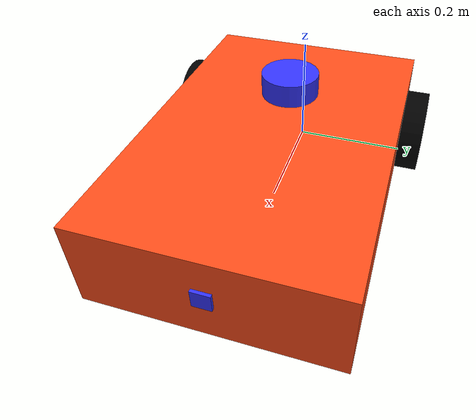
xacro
<?xml version="1.0"?>
<robot xmlns:xacro="http://www.ros.org/wiki/xacro"  name="robot">

    <xacro:arg name="use_ros2_control" default="true"/>

    <xacro:include filename="robot_core.xacro" />
    <xacro:include filename="lidar.xacro" />
    <xacro:include filename="camera.xacro" />

    <xacro:if value="$(arg use_ros2_control)">
        <xacro:include filename="ros2_control.xacro" />
    </xacro:if>
    <xacro:unless value="$(arg use_ros2_control)">
        <xacro:include filename="gazebo_control.xacro" />
    </xacro:unless>

</robot>

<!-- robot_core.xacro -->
<robot xmlns:xacro="http://www.ros.org/wiki/xacro" >
    <xacro:include filename="inertial_macros.xacro"/>

    <material name="white">
        <color rgba="1 1 1 1" />
    </material>

    <material name="orange">
        <color rgba="1 0.3 0.1 1" />
    </material>

    <material name="blue">
        <color rgba="0.2 0.2 1 1" />
    </material>

    <material name="black">
        <color rgba="0 0 0 1" />
    </material>

    <!-- BASE LINK -->
    <link name="base_link">

    </link>

    <!-- CHASSIS LINK -->
    <joint name="chassis_joint" type="fixed">
        <parent link="base_link"/>
        <child link="chassis"/>
        <origin xyz="-0.1 0 0"/>
    </joint>

        <link name="chassis">
        <visual>
            <origin xyz="0.3 0 0.075"/>"
            <geometry>
                <box size="0.6 0.4 0.15"/>
            </geometry>
            <material name="orange"/>
        </visual>
        <collision>
            <origin xyz="0.3 0 0.075"/>"
            <geometry>
                <box size="0.6 0.4 0.15"/>
            </geometry>
        </collision>
        <xacro:inertial_box  mass="1.0" x="0.6" y="0.4" z="0.15">
            <origin xyz="0.3 0 0.075" rpy="0 0 0"/>
        </xacro:inertial_box>
    </link>

    <gazebo reference="chassis">
        <material>Gazebo/Orange</material>
    </gazebo>

    <!-- LEFT WHEEL LINK -->
    <joint name="left_wheel_joint" type="continuous">
        <parent link="base_link"/>
        <child link="left_wheel"/>
        <origin xyz="0 0.22 0.05" rpy="-${pi/2} 0 0"/>
        <axis xyz="0 0 1"/>
    </joint>

    <link name="left_wheel">
        <visual>
            <geometry>
                <cylinder radius="0.075" length="0.04"/>
            </geometry>
            <material name="black"/>
        </visual>
        <collision>
            <geometry>
                <cylinder radius="0.075" length="0.04"/>
            </geometry>
        </collision>
        <xacro:inertial_cylinder mass="0.1" length="0.04" radius="0.075">
            <origin xyz="0 0 0" rpy="0 0 0"/>
        </xacro:inertial_cylinder>
    </link>

    <gazebo reference="left_wheel">
        <material>Gazebo/Black</material>
    </gazebo>

    <!-- RIGHT WHEEL LINK -->
    <joint name="right_wheel_joint" type="continuous">
        <parent link="base_link"/>
        <child link="right_wheel"/>
        <origin xyz="0 -0.22 0.05" rpy="${pi/2} 0 0"/>
        <axis xyz="0 0 -1"/>
    </joint>

    <link name="right_wheel">
        <visual>
            <geometry>
                <cylinder radius="0.075" length="0.04"/>
            </geometry>
            <material name="black"/>
        </visual>
        <collision>
            <geometry>
                <cylinder radius="0.075" length="0.04"/>
            </geometry>
        </collision>
        <xacro:inertial_cylinder mass="0.1" length="0.04" radius="0.075">
            <origin xyz="0 0 0" rpy="0 0 0"/>
        </xacro:inertial_cylinder>
    </link>

    <gazebo reference="right_wheel">
        <material>Gazebo/Black</material>
    </gazebo>

    <!-- LEFT CASTER WHEEL LINK -->
    <joint name="left_caster_wheel_joint" type="fixed">
        <parent link="chassis"/>
        <child link="left_caster_wheel"/>
        <origin xyz="0.42 0.1 0"/>
    </joint>

    <link name="left_caster_wheel">
        <visual>
            <geometry>
                <sphere radius="0.025"/>
            </geometry>
            <material name="black"/>
        </visual>
        <collision>
            <geometry>
                <sphere radius="0.025"/>
            </geometry>
        </collision>
        <xacro:inertial_sphere mass="0.1" radius="0.025">
            <origin xyz="0 0 0" rpy="0 0 0"/>
        </xacro:inertial_sphere>
    </link>

    <gazebo reference="left_caster_wheel">
        <material>Gazebo/Black</material>
        <mu1 value="0.001"/>
        <mu2 value="0.001"/>
    </gazebo>

    <!-- RIGHT CASTER WHEEL LINK -->
    <joint name="right_caster_wheel_joint" type="fixed">
        <parent link="chassis"/>
        <child link="right_caster_wheel"/>
        <origin xyz="0.42 -0.1 0"/>
    </joint>

    <link name="right_caster_wheel">
        <visual>
            <geometry>
                <sphere radius="0.025"/>
            </geometry>
            <material name="black"/>
        </visual>
        <collision>
            <geometry>
                <sphere radius="0.025"/>
            </geometry>
        </collision>
        <xacro:inertial_sphere mass="0.1" radius="0.025">
            <origin xyz="0 0 0" rpy="0 0 0"/>
        </xacro:inertial_sphere>
    </link>

    <gazebo reference="right_caster_wheel">
        <material>Gazebo/Black</material>
        <mu1 value="0.001"/>
        <mu2 value="0.001"/>
    </gazebo>

</robot>

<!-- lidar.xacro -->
<robot xmlns:xacro="http://www.ros.org/wiki/xacro" >

    <joint name="laser_joint" type="fixed">
        <parent link="chassis"/>
        <child link="laser_frame"/>
        <origin xyz="0.2 0 0.175" rpy="0 0 0"/>
    </joint>

    <link name="laser_frame">
        <visual>
            <geometry>
                <cylinder radius="0.05" length="0.04"/>
            </geometry>
            <material name="blue"/>
        </visual>
        <collision>
            <geometry>
                <cylinder radius="0.05" length="0.04"/>
            </geometry>
        </collision>
        <xacro:inertial_cylinder mass="0.1" length="0.04" radius="0.05">
            <origin xyz="0 0 0" rpy="0 0 0"/>
        </xacro:inertial_cylinder>
    </link>

    <gazebo reference="laser_frame">
        <material>Gazebo/Blue</material>
        <sensor name="laser" type="ray">
            <pose> 0 0 0 0 0 0 </pose>
            <visualize>false</visualize>
            <ray>
                <scan>
                    <horizontal>
                        <samples>360</samples>
                        <resolution>1</resolution>
                        <min_angle>-3.14</min_angle>
                        <max_angle>3.14</max_angle>
                    </horizontal>
                </scan>
                <range>
                    <min>0.3</min>
                    <max>12</max>
                    <resolution>0.01</resolution>
                </range>
            </ray>
            <plugin name="laser_controller" filename="libgazebo_ros_ray_sensor.so">
                <ros>
                    <argument>~/out:=scan</argument>
                </ros>
                <output_type>sensor_msgs/LaserScan</output_type>
                <frame_name>laser_frame</frame_name>
            </plugin>
        </sensor>

    </gazebo>

</robot>

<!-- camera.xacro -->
<robot xmlns:xacro="http://www.ros.org/wiki/xacro" >

    <joint name="camera_joint" type="fixed">
        <parent link="chassis"/>
        <child link="camera_link"/>
        <origin xyz="0.6 0 0.080" rpy="0 0 0"/>
    </joint>

    <link name="camera_link">
        <visual>
            <geometry>
                <box size="0.01 0.03 0.03"/>
            </geometry>
            <material name="blue"/>
        </visual>

    </link>

    <joint name="camera_optical_joint" type="fixed">
        <parent link="camera_link"/>
        <child link="camera_optical_link"/>
        <origin xyz="0 0 0" rpy="${-pi/2} 0 ${-pi/2}"/>
    </joint>

    <link name="camera_optical_link">

    </link>

    <gazebo reference="camera_link">
        <material>Gazebo/Blue</material>
        <sensor name="camera" type="camera">
            <pose> 0 0 0 0 0 0 </pose>
            <visualize>true</visualize>
            <update_rate>10</update_rate>
            <camera>
                <horizontal_fov>1.089</horizontal_fov>
                <image>
                    <format>R8G8B8</format>
                    <width>640</width>
                    <height>480</height>
                </image>
                <clip>
                    <near>0.05</near>
                    <far>8.0</far>
                </clip>
            </camera>
            <plugin name="camera_controller" filename="libgazebo_ros_camera.so">
                <frame_name>camera_optical_link</frame_name>
            </plugin>
        </sensor>

    </gazebo>

</robot>
